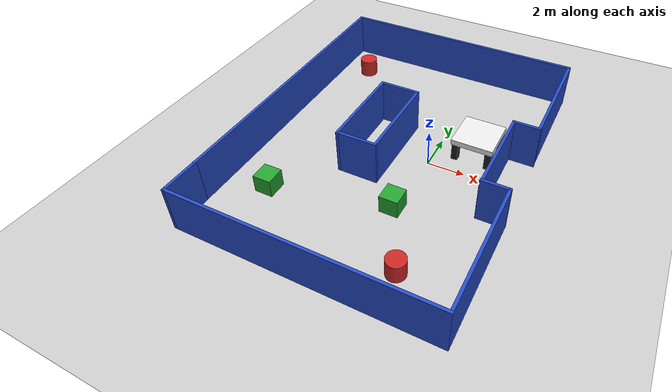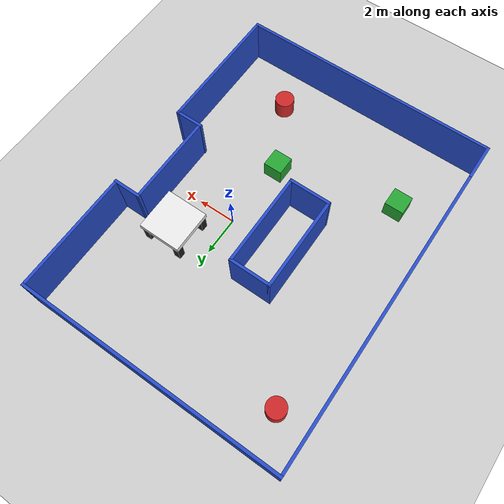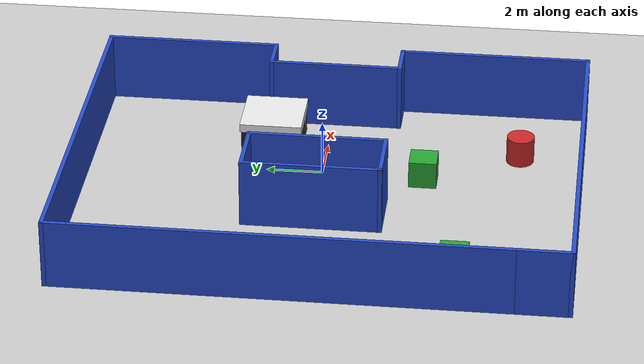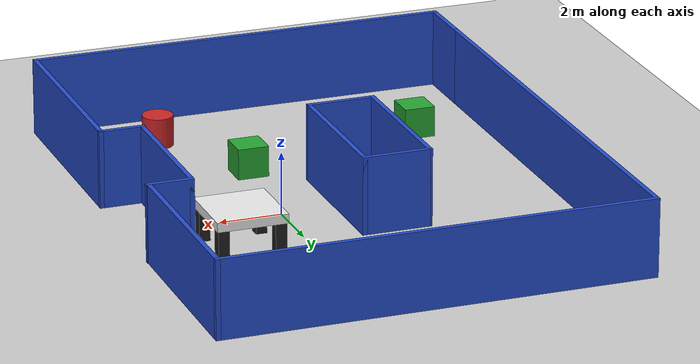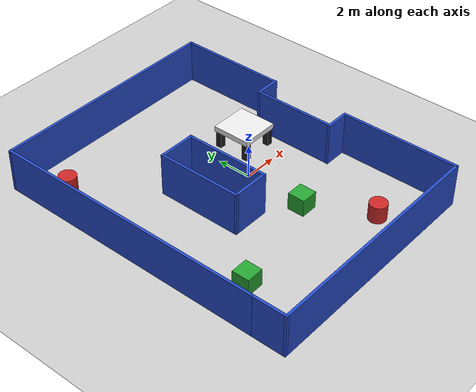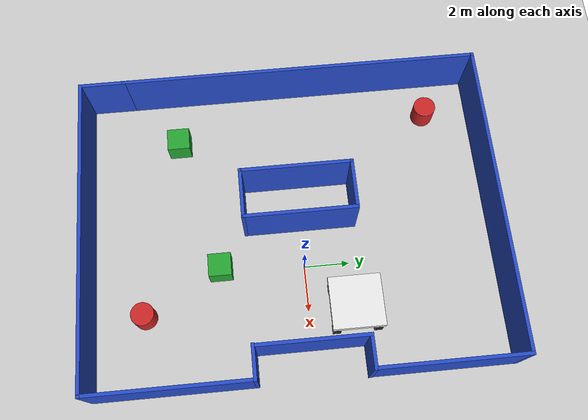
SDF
<sdf version='1.7'>
  <world name='default'>
    <light name='sun' type='directional'>
      <cast_shadows>1</cast_shadows>
      <pose>0 0 10 0 -0 0</pose>
      <diffuse>0.8 0.8 0.8 1</diffuse>
      <specular>0.2 0.2 0.2 1</specular>
      <attenuation>
        <range>1000</range>
        <constant>0.9</constant>
        <linear>0.01</linear>
        <quadratic>0.001</quadratic>
      </attenuation>
      <direction>-0.5 0.1 -0.9</direction>
      <spot>
        <inner_angle>0</inner_angle>
        <outer_angle>0</outer_angle>
        <falloff>0</falloff>
      </spot>
    </light>
    <model name='ground_plane'>
      <static>1</static>
      <link name='link'>
        <collision name='collision'>
          <geometry>
            <plane>
              <normal>0 0 1</normal>
              <size>100 100</size>
            </plane>
          </geometry>
          <surface>
            <friction>
              <ode>
                <mu>100</mu>
                <mu2>50</mu2>
              </ode>
              <torsional>
                <ode/>
              </torsional>
            </friction>
            <contact>
              <ode/>
            </contact>
            <bounce/>
          </surface>
          <max_contacts>10</max_contacts>
        </collision>
        <visual name='visual'>
          <cast_shadows>0</cast_shadows>
          <geometry>
            <plane>
              <normal>0 0 1</normal>
              <size>100 100</size>
            </plane>
          </geometry>
          <material>
            <script>
              <uri>file://media/materials/scripts/gazebo.material</uri>
              <name>Gazebo/Grey</name>
            </script>
          </material>
        </visual>
        <self_collide>0</self_collide>
        <enable_wind>0</enable_wind>
        <kinematic>0</kinematic>
      </link>
    </model>
    <gravity>0 0 -9.8</gravity>
    <magnetic_field>6e-06 2.3e-05 -4.2e-05</magnetic_field>
    <atmosphere type='adiabatic'/>
    <physics type='ode'>
      <max_step_size>0.001</max_step_size>
      <real_time_factor>1</real_time_factor>
      <real_time_update_rate>1000</real_time_update_rate>
    </physics>
    <scene>
      <ambient>0.4 0.4 0.4 1</ambient>
      <background>0.7 0.7 0.7 1</background>
      <shadows>1</shadows>
    </scene>
    <model name='mini'>
      <pose>-1.82551 -0.396204 0 0 -0 0</pose>
      <link name='Wall_10'>
        <collision name='Wall_10_Collision'>
          <geometry>
            <box>
              <size>13.75 0.15 2.5</size>
            </box>
          </geometry>
          <pose>0 0 1.25 0 -0 0</pose>
          <max_contacts>10</max_contacts>
          <surface>
            <contact>
              <ode/>
            </contact>
            <bounce/>
            <friction>
              <torsional>
                <ode/>
              </torsional>
              <ode/>
            </friction>
          </surface>
        </collision>
        <visual name='Wall_10_Visual'>
          <pose>0 0 1.25 0 -0 0</pose>
          <geometry>
            <box>
              <size>13.75 0.15 2.5</size>
            </box>
          </geometry>
          <material>
            <script>
              <uri>file://media/materials/scripts/gazebo.material</uri>
              <name>Gazebo/Blue</name>
            </script>
            <ambient>1 1 1 1</ambient>
          </material>
        </visual>
        <pose>-0.01058 8.9 0 0 -0 3.14159</pose>
        <self_collide>0</self_collide>
        <enable_wind>0</enable_wind>
        <kinematic>0</kinematic>
      </link>
      <link name='Wall_11'>
        <collision name='Wall_11_Collision'>
          <geometry>
            <box>
              <size>16 0.15 2.5</size>
            </box>
          </geometry>
          <pose>0 0 1.25 0 -0 0</pose>
          <max_contacts>10</max_contacts>
          <surface>
            <contact>
              <ode/>
            </contact>
            <bounce/>
            <friction>
              <torsional>
                <ode/>
              </torsional>
              <ode/>
            </friction>
          </surface>
        </collision>
        <visual name='Wall_11_Visual'>
          <pose>0 0 1.25 0 -0 0</pose>
          <geometry>
            <box>
              <size>16 0.15 2.5</size>
            </box>
          </geometry>
          <material>
            <script>
              <uri>file://media/materials/scripts/gazebo.material</uri>
              <name>Gazebo/Blue</name>
            </script>
            <ambient>1 1 1 1</ambient>
          </material>
        </visual>
        <pose>-6.81058 0.975 0 0 -0 -1.5708</pose>
        <self_collide>0</self_collide>
        <enable_wind>0</enable_wind>
        <kinematic>0</kinematic>
      </link>
      <link name='Wall_13'>
        <collision name='Wall_13_Collision'>
          <geometry>
            <box>
              <size>13.75 0.15 2.5</size>
            </box>
          </geometry>
          <pose>0 0 1.25 0 -0 0</pose>
          <max_contacts>10</max_contacts>
          <surface>
            <contact>
              <ode/>
            </contact>
            <bounce/>
            <friction>
              <torsional>
                <ode/>
              </torsional>
              <ode/>
            </friction>
          </surface>
        </collision>
        <visual name='Wall_13_Visual'>
          <pose>0 0 1.25 0 -0 0</pose>
          <geometry>
            <box>
              <size>13.75 0.15 2.5</size>
            </box>
          </geometry>
          <material>
            <script>
              <uri>file://media/materials/scripts/gazebo.material</uri>
              <name>Gazebo/Blue</name>
            </script>
            <ambient>1 1 1 1</ambient>
          </material>
        </visual>
        <pose>-0.01058 -8.9 0 0 -0 3.14159</pose>
        <self_collide>0</self_collide>
        <enable_wind>0</enable_wind>
        <kinematic>0</kinematic>
      </link>
      <link name='Wall_14'>
        <collision name='Wall_14_Collision'>
          <geometry>
            <box>
              <size>2.1 0.15 2.5</size>
            </box>
          </geometry>
          <pose>0 0 1.25 0 -0 0</pose>
          <max_contacts>10</max_contacts>
          <surface>
            <contact>
              <ode/>
            </contact>
            <bounce/>
            <friction>
              <torsional>
                <ode/>
              </torsional>
              <ode/>
            </friction>
          </surface>
        </collision>
        <visual name='Wall_14_Visual'>
          <pose>0 0 1.25 0 -0 0</pose>
          <geometry>
            <box>
              <size>2.1 0.15 2.5</size>
            </box>
          </geometry>
          <material>
            <script>
              <uri>file://media/materials/scripts/gazebo.material</uri>
              <name>Gazebo/Blue</name>
            </script>
            <ambient>1 1 1 1</ambient>
          </material>
        </visual>
        <pose>-6.81058 -7.925 0 0 -0 1.5708</pose>
        <self_collide>0</self_collide>
        <enable_wind>0</enable_wind>
        <kinematic>0</kinematic>
      </link>
      <link name='Wall_2'>
        <collision name='Wall_2_Collision'>
          <geometry>
            <box>
              <size>7 0.15 2.5</size>
            </box>
          </geometry>
          <pose>0 0 1.25 0 -0 0</pose>
          <max_contacts>10</max_contacts>
          <surface>
            <contact>
              <ode/>
            </contact>
            <bounce/>
            <friction>
              <torsional>
                <ode/>
              </torsional>
              <ode/>
            </friction>
          </surface>
        </collision>
        <visual name='Wall_2_Visual'>
          <pose>0 0 1.25 0 -0 0</pose>
          <geometry>
            <box>
              <size>7 0.15 2.5</size>
            </box>
          </geometry>
          <material>
            <script>
              <uri>file://media/materials/scripts/gazebo.material</uri>
              <name>Gazebo/Blue</name>
            </script>
            <ambient>1 1 1 1</ambient>
          </material>
        </visual>
        <pose>6.78942 -5.475 0 0 -0 1.5708</pose>
        <self_collide>0</self_collide>
        <enable_wind>0</enable_wind>
        <kinematic>0</kinematic>
      </link>
      <link name='Wall_24'>
        <collision name='Wall_24_Collision'>
          <geometry>
            <box>
              <size>4.75 0.15 2.5</size>
            </box>
          </geometry>
          <pose>0 0 1.25 0 -0 0</pose>
          <max_contacts>10</max_contacts>
          <surface>
            <contact>
              <ode/>
            </contact>
            <bounce/>
            <friction>
              <torsional>
                <ode/>
              </torsional>
              <ode/>
            </friction>
          </surface>
        </collision>
        <visual name='Wall_24_Visual'>
          <pose>0 0 1.25 0 -0 0</pose>
          <geometry>
            <box>
              <size>4.75 0.15 2.5</size>
            </box>
          </geometry>
          <material>
            <script>
              <uri>file://media/materials/scripts/gazebo.material</uri>
              <name>Gazebo/Blue</name>
            </script>
            <ambient>1 1 1 1</ambient>
          </material>
        </visual>
        <pose>5.46058 0.383002 0 0 -0 -1.5708</pose>
        <self_collide>0</self_collide>
        <enable_wind>0</enable_wind>
        <kinematic>0</kinematic>
      </link>
      <link name='Wall_26'>
        <collision name='Wall_26_Collision'>
          <geometry>
            <box>
              <size>1.5 0.15 2.5</size>
            </box>
          </geometry>
          <pose>0 0 1.25 0 -0 0</pose>
          <max_contacts>10</max_contacts>
          <surface>
            <contact>
              <ode/>
            </contact>
            <bounce/>
            <friction>
              <torsional>
                <ode/>
              </torsional>
              <ode/>
            </friction>
          </surface>
        </collision>
        <visual name='Wall_26_Visual'>
          <pose>0 0 1.25 0 -0 0</pose>
          <geometry>
            <box>
              <size>1.5 0.15 2.5</size>
            </box>
          </geometry>
          <material>
            <script>
              <uri>file://media/materials/scripts/gazebo.material</uri>
              <name>Gazebo/Blue</name>
            </script>
            <ambient>1 1 1 1</ambient>
          </material>
        </visual>
        <pose>6.13558 2.683 0 0 -0 0</pose>
        <self_collide>0</self_collide>
        <enable_wind>0</enable_wind>
        <kinematic>0</kinematic>
      </link>
      <link name='Wall_28'>
        <collision name='Wall_28_Collision'>
          <geometry>
            <box>
              <size>1.5 0.15 2.5</size>
            </box>
          </geometry>
          <pose>0 0 1.25 0 -0 0</pose>
          <max_contacts>10</max_contacts>
          <surface>
            <contact>
              <ode/>
            </contact>
            <bounce/>
            <friction>
              <torsional>
                <ode/>
              </torsional>
              <ode/>
            </friction>
          </surface>
        </collision>
        <visual name='Wall_28_Visual'>
          <pose>0 0 1.25 0 -0 0</pose>
          <geometry>
            <box>
              <size>1.5 0.15 2.5</size>
            </box>
          </geometry>
          <material>
            <script>
              <uri>file://media/materials/scripts/gazebo.material</uri>
              <name>Gazebo/Blue</name>
            </script>
            <ambient>1 1 1 1</ambient>
          </material>
        </visual>
        <pose>6.11442 -2.05 0 0 -0 3.14159</pose>
        <self_collide>0</self_collide>
        <enable_wind>0</enable_wind>
        <kinematic>0</kinematic>
      </link>
      <link name='Wall_30'>
        <collision name='Wall_30_Collision'>
          <geometry>
            <box>
              <size>2.25 0.15 2.5</size>
            </box>
          </geometry>
          <pose>0 0 1.25 0 -0 0</pose>
          <max_contacts>10</max_contacts>
          <surface>
            <contact>
              <ode/>
            </contact>
            <bounce/>
            <friction>
              <torsional>
                <ode/>
              </torsional>
              <ode/>
            </friction>
          </surface>
        </collision>
        <visual name='Wall_30_Visual'>
          <pose>0 0 1.25 0 -0 0</pose>
          <geometry>
            <box>
              <size>2.25 0.15 2.5</size>
            </box>
          </geometry>
          <material>
            <script>
              <uri>file://media/materials/scripts/gazebo.material</uri>
              <name>Gazebo/Blue</name>
            </script>
            <ambient>1 1 1 1</ambient>
          </material>
        </visual>
        <pose>-1.01058 2.8 0 0 -0 0</pose>
        <self_collide>0</self_collide>
        <enable_wind>0</enable_wind>
        <kinematic>0</kinematic>
      </link>
      <link name='Wall_31'>
        <collision name='Wall_31_Collision'>
          <geometry>
            <box>
              <size>5 0.15 2.5</size>
            </box>
          </geometry>
          <pose>0 0 1.25 0 -0 0</pose>
          <max_contacts>10</max_contacts>
          <surface>
            <contact>
              <ode/>
            </contact>
            <bounce/>
            <friction>
              <torsional>
                <ode/>
              </torsional>
              <ode/>
            </friction>
          </surface>
        </collision>
        <visual name='Wall_31_Visual'>
          <pose>0 0 1.25 0 -0 0</pose>
          <geometry>
            <box>
              <size>5 0.15 2.5</size>
            </box>
          </geometry>
          <material>
            <script>
              <uri>file://media/materials/scripts/gazebo.material</uri>
              <name>Gazebo/Blue</name>
            </script>
            <ambient>1 1 1 1</ambient>
          </material>
        </visual>
        <pose>0.03942 0.375 0 0 -0 -1.5708</pose>
        <self_collide>0</self_collide>
        <enable_wind>0</enable_wind>
        <kinematic>0</kinematic>
      </link>
      <link name='Wall_32'>
        <collision name='Wall_32_Collision'>
          <geometry>
            <box>
              <size>2.25 0.15 2.5</size>
            </box>
          </geometry>
          <pose>0 0 1.25 0 -0 0</pose>
          <max_contacts>10</max_contacts>
          <surface>
            <contact>
              <ode/>
            </contact>
            <bounce/>
            <friction>
              <torsional>
                <ode/>
              </torsional>
              <ode/>
            </friction>
          </surface>
        </collision>
        <visual name='Wall_32_Visual'>
          <pose>0 0 1.25 0 -0 0</pose>
          <geometry>
            <box>
              <size>2.25 0.15 2.5</size>
            </box>
          </geometry>
          <material>
            <script>
              <uri>file://media/materials/scripts/gazebo.material</uri>
              <name>Gazebo/Blue</name>
            </script>
            <ambient>1 1 1 1</ambient>
          </material>
        </visual>
        <pose>-1.01058 -2.05 0 0 -0 3.14159</pose>
        <self_collide>0</self_collide>
        <enable_wind>0</enable_wind>
        <kinematic>0</kinematic>
      </link>
      <link name='Wall_7'>
        <collision name='Wall_7_Collision'>
          <geometry>
            <box>
              <size>5 0.15 2.5</size>
            </box>
          </geometry>
          <pose>0 0 1.25 0 -0 0</pose>
          <max_contacts>10</max_contacts>
          <surface>
            <contact>
              <ode/>
            </contact>
            <bounce/>
            <friction>
              <torsional>
                <ode/>
              </torsional>
              <ode/>
            </friction>
          </surface>
        </collision>
        <visual name='Wall_7_Visual'>
          <pose>0 0 1.25 0 -0 0</pose>
          <geometry>
            <box>
              <size>5 0.15 2.5</size>
            </box>
          </geometry>
          <material>
            <script>
              <uri>file://media/materials/scripts/gazebo.material</uri>
              <name>Gazebo/Blue</name>
            </script>
            <ambient>1 1 1 1</ambient>
          </material>
        </visual>
        <pose>-2.06058 0.375 0 0 -0 1.5708</pose>
        <self_collide>0</self_collide>
        <enable_wind>0</enable_wind>
        <kinematic>0</kinematic>
      </link>
      <link name='Wall_9'>
        <collision name='Wall_9_Collision'>
          <geometry>
            <box>
              <size>6.25 0.15 2.5</size>
            </box>
          </geometry>
          <pose>0 0 1.25 0 -0 0</pose>
          <max_contacts>10</max_contacts>
          <surface>
            <contact>
              <ode/>
            </contact>
            <bounce/>
            <friction>
              <torsional>
                <ode/>
              </torsional>
              <ode/>
            </friction>
          </surface>
        </collision>
        <visual name='Wall_9_Visual'>
          <pose>0 0 1.25 0 -0 0</pose>
          <geometry>
            <box>
              <size>6.25 0.15 2.5</size>
            </box>
          </geometry>
          <material>
            <script>
              <uri>file://media/materials/scripts/gazebo.material</uri>
              <name>Gazebo/Blue</name>
            </script>
            <ambient>1 1 1 1</ambient>
          </material>
        </visual>
        <pose>6.78942 5.85 0 0 -0 1.5708</pose>
        <self_collide>0</self_collide>
        <enable_wind>0</enable_wind>
        <kinematic>0</kinematic>
      </link>
      <static>1</static>
    </model>
    <model name='unit_box'>
      <pose>-6.35709 -5.20827 0.5 0 -0 0</pose>
      <link name='link'>
        <inertial>
          <mass>1</mass>
          <inertia>
            <ixx>0.166667</ixx>
            <ixy>0</ixy>
            <ixz>0</ixz>
            <iyy>0.166667</iyy>
            <iyz>0</iyz>
            <izz>0.166667</izz>
          </inertia>
          <pose>0 0 0 0 -0 0</pose>
        </inertial>
        <collision name='collision'>
          <geometry>
            <box>
              <size>1 1 1</size>
            </box>
          </geometry>
          <max_contacts>10</max_contacts>
          <surface>
            <contact>
              <ode/>
            </contact>
            <bounce/>
            <friction>
              <torsional>
                <ode/>
              </torsional>
              <ode/>
            </friction>
          </surface>
        </collision>
        <visual name='visual'>
          <geometry>
            <box>
              <size>1 1 1</size>
            </box>
          </geometry>
          <material>
            <script>
              <name>Gazebo/Green</name>
              <uri>file://media/materials/scripts/gazebo.material</uri>
            </script>
          </material>
        </visual>
        <self_collide>0</self_collide>
        <enable_wind>0</enable_wind>
        <kinematic>0</kinematic>
      </link>
    </model>
    <model name='unit_box_0'>
      <pose>-0.213589 -3.67443 0.5 0 -0 0</pose>
      <link name='link'>
        <inertial>
          <mass>1</mass>
          <inertia>
            <ixx>0.166667</ixx>
            <ixy>0</ixy>
            <ixz>0</ixz>
            <iyy>0.166667</iyy>
            <iyz>0</iyz>
            <izz>0.166667</izz>
          </inertia>
          <pose>0 0 0 0 -0 0</pose>
        </inertial>
        <collision name='collision'>
          <geometry>
            <box>
              <size>1 1 1</size>
            </box>
          </geometry>
          <max_contacts>10</max_contacts>
          <surface>
            <contact>
              <ode/>
            </contact>
            <bounce/>
            <friction>
              <torsional>
                <ode/>
              </torsional>
              <ode/>
            </friction>
          </surface>
        </collision>
        <visual name='visual'>
          <geometry>
            <box>
              <size>1 1 1</size>
            </box>
          </geometry>
          <material>
            <script>
              <name>Gazebo/Green</name>
              <uri>file://media/materials/scripts/gazebo.material</uri>
            </script>
          </material>
        </visual>
        <self_collide>0</self_collide>
        <enable_wind>0</enable_wind>
        <kinematic>0</kinematic>
      </link>
    </model>
    <model name='unit_cylinder_0'>
      <pose>1.64762 -7.05044 0.5 0 -0 0</pose>
      <link name='link'>
        <inertial>
          <mass>1</mass>
          <inertia>
            <ixx>0.145833</ixx>
            <ixy>0</ixy>
            <ixz>0</ixz>
            <iyy>0.145833</iyy>
            <iyz>0</iyz>
            <izz>0.125</izz>
          </inertia>
          <pose>0 0 0 0 -0 0</pose>
        </inertial>
        <collision name='collision'>
          <geometry>
            <cylinder>
              <radius>0.5</radius>
              <length>1</length>
            </cylinder>
          </geometry>
          <max_contacts>10</max_contacts>
          <surface>
            <contact>
              <ode/>
            </contact>
            <bounce/>
            <friction>
              <torsional>
                <ode/>
              </torsional>
              <ode/>
            </friction>
          </surface>
        </collision>
        <visual name='visual'>
          <geometry>
            <cylinder>
              <radius>0.5</radius>
              <length>1</length>
            </cylinder>
          </geometry>
          <material>
            <script>
              <name>Gazebo/Red</name>
              <uri>file://media/materials/scripts/gazebo.material</uri>
            </script>
          </material>
        </visual>
        <self_collide>0</self_collide>
        <enable_wind>0</enable_wind>
        <kinematic>0</kinematic>
      </link>
    </model>
    <model name='unit_cylinder_1'>
      <pose>-6.94915 6.32114 0.5 0 -0 0</pose>
      <link name='link'>
        <inertial>
          <mass>1</mass>
          <inertia>
            <ixx>0.145833</ixx>
            <ixy>0</ixy>
            <ixz>0</ixz>
            <iyy>0.145833</iyy>
            <iyz>0</iyz>
            <izz>0.125</izz>
          </inertia>
          <pose>0 0 0 0 -0 0</pose>
        </inertial>
        <collision name='collision'>
          <geometry>
            <cylinder>
              <radius>0.5</radius>
              <length>1</length>
            </cylinder>
          </geometry>
          <max_contacts>10</max_contacts>
          <surface>
            <contact>
              <ode/>
            </contact>
            <bounce/>
            <friction>
              <torsional>
                <ode/>
              </torsional>
              <ode/>
            </friction>
          </surface>
        </collision>
        <visual name='visual'>
          <geometry>
            <cylinder>
              <radius>0.5</radius>
              <length>1</length>
            </cylinder>
          </geometry>
          <material>
            <script>
              <name>Gazebo/Red</name>
              <uri>file://media/materials/scripts/gazebo.material</uri>
            </script>
          </material>
        </visual>
        <self_collide>0</self_collide>
        <enable_wind>0</enable_wind>
        <kinematic>0</kinematic>
      </link>
    </model>

    <model name='obstacle_table_custom'>
      <static>1</static>
      <pose>2 2 0 0 -0 0</pose>
      <link name='link'>
        <visual name='top_visual'>
          <pose>0 0 1.15 0 -0 0</pose>
          <geometry>
            <box>
              <size>2.25 2.25 0.3</size>
            </box>
          </geometry>
          <material>
            <script>
              <uri>file://media/materials/scripts/gazebo.material</uri>
              <name>Gazebo/White</name>
            </script>
          </material>
        </visual>
        <collision name='top_collision'>
          <pose>0 0 1.15 0 -0 0</pose>
          <geometry>
            <box>
              <size>2.25 2.25 0.3</size>
            </box>
          </geometry>
          <max_contacts>10</max_contacts>
          <surface>
            <contact>
              <ode/>
            </contact>
            <bounce/>
            <friction>
              <torsional>
                <ode/>
              </torsional>
              <ode/>
            </friction>
          </surface>
        </collision>
        <visual name='leg1_visual'>
          <pose>0.9 0.9 0.5 0 -0 0</pose>
          <geometry>
            <box>
              <size>0.35 0.35 1</size>
            </box>
          </geometry>
          <material>
            <script>
              <uri>file://media/materials/scripts/gazebo.material</uri>
              <name>Gazebo/Black</name>
            </script>
          </material>
        </visual>
        <collision name='leg1_collision'>
          <pose>0.9 0.9 0.5 0 -0 0</pose>
          <geometry>
            <box>
              <size>0.35 0.35 1</size>
            </box>
          </geometry>
          <max_contacts>10</max_contacts>
          <surface>
            <contact>
              <ode/>
            </contact>
            <bounce/>
            <friction>
              <torsional>
                <ode/>
              </torsional>
              <ode/>
            </friction>
          </surface>
        </collision>
        <visual name='leg2_visual'>
          <pose>0.9 -0.9 0.5 0 -0 0</pose>
          <geometry>
            <box>
              <size>0.35 0.35 1</size>
            </box>
          </geometry>
          <material>
            <script>
              <name>Gazebo/Black</name>
              <uri>file://media/materials/scripts/gazebo.material</uri>
            </script>
          </material>
        </visual>
        <collision name='leg2_collision'>
          <pose>0.9 -0.9 0.5 0 -0 0</pose>
          <geometry>
            <box>
              <size>0.35 0.35 1</size>
            </box>
          </geometry>
          <max_contacts>10</max_contacts>
          <surface>
            <contact>
              <ode/>
            </contact>
            <bounce/>
            <friction>
              <torsional>
                <ode/>
              </torsional>
              <ode/>
            </friction>
          </surface>
        </collision>
        <visual name='leg3_visual'>
          <pose>-0.9 0.9 0.5 0 -0 0</pose>
          <geometry>
            <box>
              <size>0.35 0.35 1</size>
            </box>
          </geometry>
          <material>
            <script>
              <name>Gazebo/Black</name>
              <uri>file://media/materials/scripts/gazebo.material</uri>
            </script>
          </material>
        </visual>
        <collision name='leg3_collision'>
          <pose>-0.9 0.9 0.5 0 -0 0</pose>
          <geometry>
            <box>
              <size>0.35 0.35 1</size>
            </box>
          </geometry>
          <max_contacts>10</max_contacts>
          <surface>
            <contact>
              <ode/>
            </contact>
            <bounce/>
            <friction>
              <torsional>
                <ode/>
              </torsional>
              <ode/>
            </friction>
          </surface>
        </collision>
        <visual name='leg4_visual'>
          <pose>-0.9 -0.9 0.5 0 -0 0</pose>
          <geometry>
            <box>
              <size>0.35 0.35 1</size>
            </box>
          </geometry>
          <material>
            <script>
              <name>Gazebo/Black</name>
              <uri>file://media/materials/scripts/gazebo.material</uri>
            </script>
          </material>
        </visual>
        <collision name='leg4_collision'>
          <pose>-0.9 -0.9 0.5 0 -0 0</pose>
          <geometry>
            <box>
              <size>0.35 0.35 1</size>
            </box>
          </geometry>
          <max_contacts>10</max_contacts>
          <surface>
            <contact>
              <ode/>
            </contact>
            <bounce/>
            <friction>
              <torsional>
                <ode/>
              </torsional>
              <ode/>
            </friction>
          </surface>
        </collision>
        <self_collide>0</self_collide>
        <enable_wind>0</enable_wind>
        <kinematic>0</kinematic>
      </link>
    </model>

    <gui fullscreen='0'>
      <camera name='user_camera'>
        <pose>-2.53584 -2.85785 35.3644 0 1.42364 -0.035808</pose>
        <view_controller>orbit</view_controller>
        <projection_type>perspective</projection_type>
      </camera>
    </gui>
    <audio>
      <device>default</device>
    </audio>
    <wind/>
    <spherical_coordinates>
      <surface_model>EARTH_WGS84</surface_model>
      <latitude_deg>0</latitude_deg>
      <longitude_deg>0</longitude_deg>
      <elevation>0</elevation>
      <heading_deg>0</heading_deg>
    </spherical_coordinates>
  </world>
</sdf>
